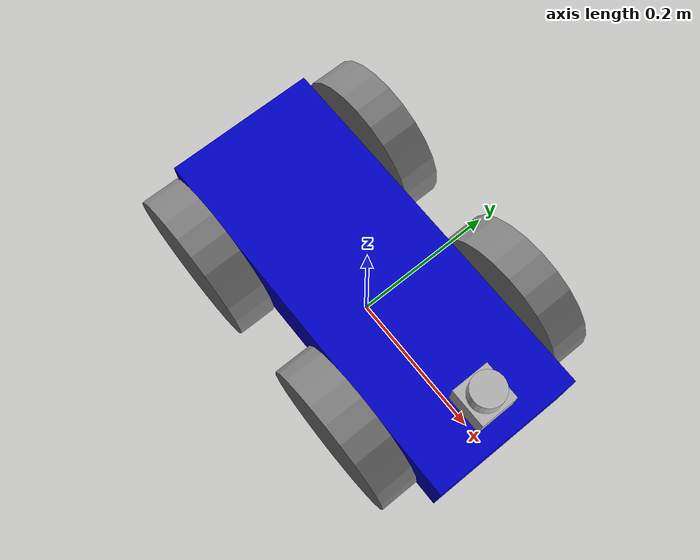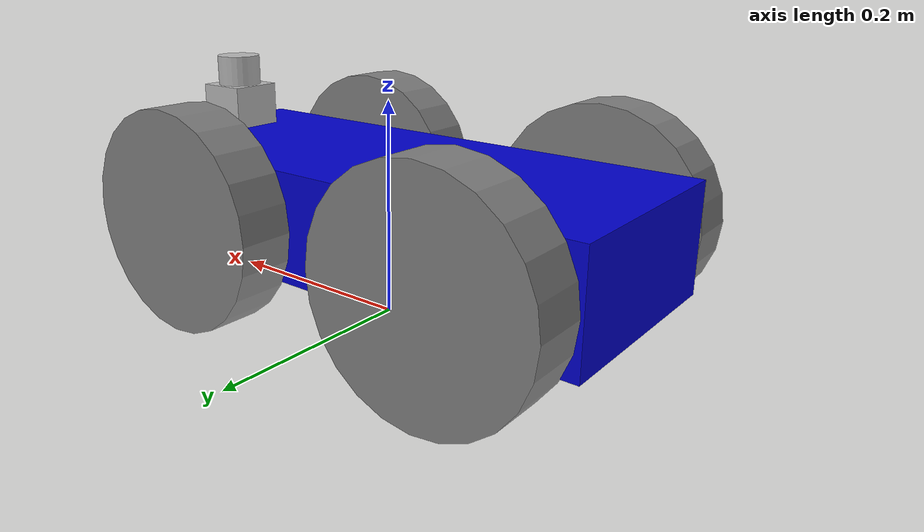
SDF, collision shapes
<?xml version='1.0'?>

<sdf version='1.4'>
  <model name="transportation_two">
	<static>false</static>
 	  <link name='chassis'>
    <pose>0 0 .1 0 0 0</pose>
      <collision name='collision'>
        <geometry>
          <box>
            <size>.5 .2 .1</size>
          </box>
        </geometry>
      </collision>
      <visual name='visual'>
        <geometry>
          <box>
            <size>.5 .2 .1</size>
          </box>
        </geometry>
        <material>
          <ambient>0 0 0.8 1</ambient>
          <diffuse>0 0 0.8 1</diffuse>
          <specular>0.1 0.1 0.1 1</specular>
          <emissive>0 0 0 0</emissive>
        </material>
      </visual>
    </link>

      <link name="left_wheel">
        <pose>0.12 0.13 0.1 0 1.5707 1.5707</pose>
        <collision name="collision">
          <geometry>
            <cylinder>
              <radius>.1</radius>
              <length>.05</length>
            </cylinder>
          </geometry>
        </collision>
        <visual name="visual">
          <geometry>
            <cylinder>
              <radius>.1</radius>
              <length>.05</length>
            </cylinder>
          </geometry>
          <material>
            <ambient>0.5 0.5 0.5 1</ambient>
            <diffuse>0.5 0.5 0.5 1</diffuse>
            <specular>0.1 0.1 0.1 1</specular>
            <emissive>0 0 0 0</emissive>
        </material>
        </visual>
      </link>
      <link name="right_wheel">
        <pose>0.12 -0.13 0.1 0 1.5707 1.5707</pose>
        <collision name="collision">
          <geometry>
            <cylinder>
              <radius>.1</radius>
              <length>.05</length>
            </cylinder>
          </geometry>
        </collision>
        <visual name="visual">
          <geometry>
            <cylinder>
              <radius>.1</radius>
              <length>.05</length>
            </cylinder>
          </geometry>
          <material>
            <ambient>0.5 0.5 0.5 1</ambient>
            <diffuse>0.5 0.5 0.5 1</diffuse>
            <specular>0.1 0.1 0.1 1</specular>
            <emissive>0 0 0 0</emissive>
        </material>
        </visual>
      </link>
      <link name="right_rear_wheel">
        <pose>-0.15 -0.13 0.1 0 1.5707 1.5707</pose>
        <collision name="collision">
          <geometry>
            <cylinder>
              <radius>.1</radius>
              <length>.05</length>
            </cylinder>
          </geometry>
        </collision>
        <visual name="visual">
          <geometry>
            <cylinder>
              <radius>.1</radius>
              <length>.05</length>
            </cylinder>
          </geometry>
          <material>
            <ambient>0.5 0.5 0.5 1</ambient>
            <diffuse>0.5 0.5 0.5 1</diffuse>
            <specular>0.1 0.1 0.1 1</specular>
            <emissive>0 0 0 0</emissive>
          </material>
        </visual>
      </link>
 	    <link name="left_rear_wheel">
        <pose>-0.15 0.13 0.1 0 1.5707 1.5707</pose>
        <collision name="collision">
          <geometry>
            <cylinder>
              <radius>.1</radius>
              <length>.05</length>
            </cylinder>
          </geometry>
        </collision>
        <visual name="visual">
          <geometry>
            <cylinder>
              <radius>.1</radius>
              <length>.05</length>
            </cylinder>
          </geometry>
          <material>
            <ambient>0.5 0.5 0.5 1</ambient>
            <diffuse>0.5 0.5 0.5 1</diffuse>
            <specular>0.1 0.1 0.1 1</specular>
            <emissive>0 0 0 0</emissive>
        </material>
        </visual>
      </link>
      <joint type="revolute" name="left_wheel_hinge">
        <pose>0 0 -0.03 0 0 0</pose>
        <child>left_wheel</child>
        <parent>chassis</parent>
        <axis>
          <xyz>0 1 0</xyz>
        </axis>
      </joint>

      <joint type="revolute" name="right_wheel_hinge">
        <pose>0 0 0.03 0 0 0</pose>
        <child>right_wheel</child>
        <parent>chassis</parent>
        <axis>
          <xyz>0 1 0</xyz>
        </axis>
      </joint>
      <joint type="revolute" name="left_rear_wheel_hinge">
        <pose>0 0 -0.03 0 0 0</pose>
        <child>left_rear_wheel</child>
        <parent>chassis</parent>
        <axis>
          <xyz>0 1 0</xyz>
        </axis>
      </joint>
      <joint type="revolute" name="right_rear_wheel_hinge">
        <pose>0 0 -0.03 0 0 0</pose>
        <child>right_rear_wheel</child>
        <parent>chassis</parent>
        <axis>
          <xyz>0 1 0</xyz>
        </axis>
      </joint>
    <include>
      <uri>model://hokuyo</uri>
      <pose>0.2 0 0.19 0 0 0</pose>
    </include>
    <joint name="hokuyo_joint" type="fixed">
      <child>hokuyo::link</child>
      <parent>chassis</parent>
    </joint>
  </model>

  <gazebo>
    <plugin name="gazebo_ros_control" filename="libgazebo_ros_control.so">
      <robotNamespace>/</robotNamespace>
    </plugin>
  </gazebo>

</sdf>

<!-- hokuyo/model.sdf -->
<sdf version="1.5">
  <model name="hokuyo">
    <pose>0 0 0.035 0 0 0</pose>
    <link name="link">
      <inertial>
        <mass>0.1</mass>
      </inertial>
      <visual name="visual">
        <geometry>
          <mesh>
            <uri>model://../model_source/models/hokuyo/meshes/hokuyo.dae</uri>
          </mesh>
        </geometry>
      </visual>
      <collision name="collision-base">
        <pose>0 0 -0.0145 0 0 0</pose>
        <geometry>
          <box>
            <size>0.05 0.05 0.041</size>
          </box>
        </geometry>
      </collision>
      <collision name="collision-top">
        <pose>0 0 0.0205 0 0 0</pose>
        <geometry>
          <cylinder>
            <radius>0.021</radius>
            <length>0.029</length>
          </cylinder>
        </geometry>
      </collision>
      <sensor name="laser" type="ray">
        <pose>0.01 0 0.0175 0 -0 0</pose>
        <ray>
          <scan>
            <horizontal>
              <samples>640</samples>
              <resolution>1</resolution>
              <min_angle>-2.26889</min_angle>
              <max_angle>2.268899</max_angle>
            </horizontal>
          </scan>
          <range>
            <min>0.08</min>
            <max>10</max>
            <resolution>0.01</resolution>
          </range>
        </ray>
        <plugin name="laser" filename="libRayPlugin.so" />
        <always_on>1</always_on>
        <update_rate>30</update_rate>
        <visualize>true</visualize>
      </sensor>
    </link>
  </model>
</sdf>
